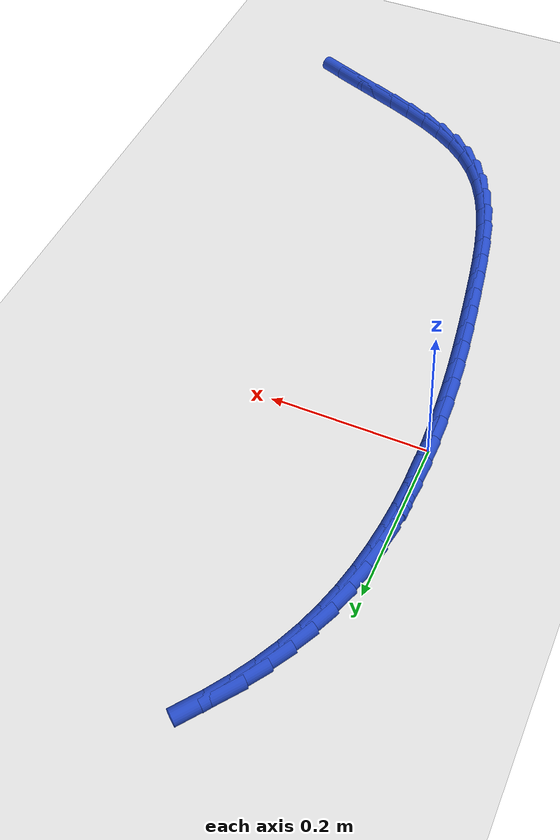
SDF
<sdf version="1.6">
 <world name="default">
  <model name="ground_plane">
   <static>1</static>
   <link name="link">
    <collision name="collision">
     <geometry><plane><normal>0 0 1</normal><size>100 100</size></plane></geometry>
     <surface><friction><ode><mu>100</mu><mu2>50</mu2></ode></friction></surface>
    </collision>
    <visual name="visual">
     <cast_shadows>0</cast_shadows>
     <geometry><plane><normal>0 0 1</normal><size>100 100</size></plane></geometry>
     <material>
      <script><uri>file://media/materials/scripts/gazebo.material</uri><name>Gazebo/WhiteGlow</name></script>
     </material>
    </visual>
   </link>
  </model>
  <model name="line">
   <link name="link_0">
    <pose>2.6020852139652106e-18 4.85722573273506e-17 0.01 0 1.57 -1.5473122379264526</pose>
    <collision name="collision">
     <geometry><cylinder><radius>0.01</radius><length>0.08</length></cylinder></geometry>
    </collision>
    <visual name="visual">
     <material>
      <script><name>Gazebo/Blue</name><uri>file://media/materials/scripts/gazebo.material</uri></script>
     </material>
     <geometry><cylinder><radius>0.01</radius><length>0.08</length></cylinder></geometry>
    </visual>
   </link>
   <link name="link_1">
    <pose>-0.0007039272480909441 0.02996913533298461 0.01 0 1.57 1.5633113529502236</pose>
    <collision name="collision">
     <geometry><cylinder><radius>0.01</radius><length>0.08</length></cylinder></geometry>
    </collision>
    <visual name="visual">
     <material>
      <script><name>Gazebo/Blue</name><uri>file://media/materials/scripts/gazebo.material</uri></script>
     </material>
     <geometry><cylinder><radius>0.01</radius><length>0.08</length></cylinder></geometry>
    </visual>
   </link>
   <link name="link_2">
    <pose>-0.0004782376076412418 0.06012093417368127 0.01 0 1.57 1.5284069422193465</pose>
    <collision name="collision">
     <geometry><cylinder><radius>0.01</radius><length>0.08</length></cylinder></geometry>
    </collision>
    <visual name="visual">
     <material>
      <script><name>Gazebo/Blue</name><uri>file://media/materials/scripts/gazebo.material</uri></script>
     </material>
     <geometry><cylinder><radius>0.01</radius><length>0.08</length></cylinder></geometry>
    </visual>
   </link>
   <link name="link_3">
    <pose>0.000802609183513676 0.09031904968383503 0.01 0 1.57 1.4892208433925638</pose>
    <collision name="collision">
     <geometry><cylinder><radius>0.01</radius><length>0.08</length></cylinder></geometry>
    </collision>
    <visual name="visual">
     <material>
      <script><name>Gazebo/Blue</name><uri>file://media/materials/scripts/gazebo.material</uri></script>
     </material>
     <geometry><cylinder><radius>0.01</radius><length>0.08</length></cylinder></geometry>
    </visual>
   </link>
   <link name="link_4">
    <pose>0.00326415338753838 0.12042713502519091 0.01 0 1.57 1.4453683356091211</pose>
    <collision name="collision">
     <geometry><cylinder><radius>0.01</radius><length>0.08</length></cylinder></geometry>
    </collision>
    <visual name="visual">
     <material>
      <script><name>Gazebo/Blue</name><uri>file://media/materials/scripts/gazebo.material</uri></script>
     </material>
     <geometry><cylinder><radius>0.01</radius><length>0.08</length></cylinder></geometry>
    </visual>
   </link>
   <link name="link_5">
    <pose>0.007031935266597433 0.1503088433594939 0.01 0 1.57 1.3964419279009448</pose>
    <collision name="collision">
     <geometry><cylinder><radius>0.01</radius><length>0.08</length></cylinder></geometry>
    </collision>
    <visual name="visual">
     <material>
      <script><name>Gazebo/Blue</name><uri>file://media/materials/scripts/gazebo.material</uri></script>
     </material>
     <geometry><cylinder><radius>0.01</radius><length>0.08</length></cylinder></geometry>
    </visual>
   </link>
   <link name="link_6">
    <pose>0.012231495082855402 0.17982782784848902 0.01 0 1.57 1.3420361859047418</pose>
    <collision name="collision">
     <geometry><cylinder><radius>0.01</radius><length>0.08</length></cylinder></geometry>
    </collision>
    <visual name="visual">
     <material>
      <script><name>Gazebo/Blue</name><uri>file://media/materials/scripts/gazebo.material</uri></script>
     </material>
     <geometry><cylinder><radius>0.01</radius><length>0.08</length></cylinder></geometry>
    </visual>
   </link>
   <link name="link_7">
    <pose>0.018988373098476855 0.20884774165392128 0.01 0 1.57 1.281785231526709</pose>
    <collision name="collision">
     <geometry><cylinder><radius>0.01</radius><length>0.08</length></cylinder></geometry>
    </collision>
    <visual name="visual">
     <material>
      <script><name>Gazebo/Blue</name><uri>file://media/materials/scripts/gazebo.material</uri></script>
     </material>
     <geometry><cylinder><radius>0.01</radius><length>0.08</length></cylinder></geometry>
    </visual>
   </link>
   <link name="link_8">
    <pose>0.027428109575626358 0.23723223793753567 0.01 0 1.57 1.2157204596871165</pose>
    <collision name="collision">
     <geometry><cylinder><radius>0.01</radius><length>0.08</length></cylinder></geometry>
    </collision>
    <visual name="visual">
     <material>
      <script><name>Gazebo/Blue</name><uri>file://media/materials/scripts/gazebo.material</uri></script>
     </material>
     <geometry><cylinder><radius>0.01</radius><length>0.08</length></cylinder></geometry>
    </visual>
   </link>
   <link name="link_9">
    <pose>0.03766852281448814 0.26484995638541303 0.01 0 1.57 1.148590877885111</pose>
    <collision name="collision">
     <geometry><cylinder><radius>0.01</radius><length>0.08</length></cylinder></geometry>
    </collision>
    <visual name="visual">
     <material>
      <script><name>Gazebo/Blue</name><uri>file://media/materials/scripts/gazebo.material</uri></script>
     </material>
     <geometry><cylinder><radius>0.01</radius><length>0.08</length></cylinder></geometry>
    </visual>
   </link>
   <link name="link_10">
    <pose>0.0497065658301504 0.29164758649623557 0.01 0 1.57 1.084515714756067</pose>
    <collision name="collision">
     <geometry><cylinder><radius>0.01</radius><length>0.08</length></cylinder></geometry>
    </collision>
    <visual name="visual">
     <material>
      <script><name>Gazebo/Blue</name><uri>file://media/materials/scripts/gazebo.material</uri></script>
     </material>
     <geometry><cylinder><radius>0.01</radius><length>0.08</length></cylinder></geometry>
    </visual>
   </link>
   <link name="link_11">
    <pose>0.06344335004731635 0.3176337083120544 0.01 0 1.57 1.0238896088188574</pose>
    <collision name="collision">
     <geometry><cylinder><radius>0.01</radius><length>0.08</length></cylinder></geometry>
    </collision>
    <visual name="visual">
     <material>
      <script><name>Gazebo/Blue</name><uri>file://media/materials/scripts/gazebo.material</uri></script>
     </material>
     <geometry><cylinder><radius>0.01</radius><length>0.08</length></cylinder></geometry>
    </visual>
   </link>
   <link name="link_12">
    <pose>0.0787773542475194 0.34281860192722147 0.01 0 1.57 0.9668722112428474</pose>
    <collision name="collision">
     <geometry><cylinder><radius>0.01</radius><length>0.08</length></cylinder></geometry>
    </collision>
    <visual name="visual">
     <material>
      <script><name>Gazebo/Blue</name><uri>file://media/materials/scripts/gazebo.material</uri></script>
     </material>
     <geometry><cylinder><radius>0.01</radius><length>0.08</length></cylinder></geometry>
    </visual>
   </link>
   <link name="link_13">
    <pose>0.09560705721229285 0.36721254743608883 0.01 0 1.57 0.9135110585352482</pose>
    <collision name="collision">
     <geometry><cylinder><radius>0.01</radius><length>0.08</length></cylinder></geometry>
    </collision>
    <visual name="visual">
     <material>
      <script><name>Gazebo/Blue</name><uri>file://media/materials/scripts/gazebo.material</uri></script>
     </material>
     <geometry><cylinder><radius>0.01</radius><length>0.08</length></cylinder></geometry>
    </visual>
   </link>
   <link name="link_225">
    <pose>0.3558021597343125 -0.5951620002998941 0.01 0 1.57 -0.368552470827717</pose>
    <collision name="collision">
     <geometry><cylinder><radius>0.01</radius><length>0.08</length></cylinder></geometry>
    </collision>
    <visual name="visual">
     <material>
      <script><name>Gazebo/Blue</name><uri>file://media/materials/scripts/gazebo.material</uri></script>
     </material>
     <geometry><cylinder><radius>0.01</radius><length>0.08</length></cylinder></geometry>
    </visual>
   </link>
   <link name="link_226">
    <pose>0.32531708837969475 -0.5833887022451519 0.01 0 1.57 -0.3541493111493682</pose>
    <collision name="collision">
     <geometry><cylinder><radius>0.01</radius><length>0.08</length></cylinder></geometry>
    </collision>
    <visual name="visual">
     <material>
      <script><name>Gazebo/Blue</name><uri>file://media/materials/scripts/gazebo.material</uri></script>
     </material>
     <geometry><cylinder><radius>0.01</radius><length>0.08</length></cylinder></geometry>
    </visual>
   </link>
   <link name="link_227">
    <pose>0.29430615253818176 -0.5719227856817868 0.01 0 1.57 -0.3578488060266328</pose>
    <collision name="collision">
     <geometry><cylinder><radius>0.01</radius><length>0.08</length></cylinder></geometry>
    </collision>
    <visual name="visual">
     <material>
      <script><name>Gazebo/Blue</name><uri>file://media/materials/scripts/gazebo.material</uri></script>
     </material>
     <geometry><cylinder><radius>0.01</radius><length>0.08</length></cylinder></geometry>
    </visual>
   </link>
   <link name="link_228">
    <pose>0.2633090527748472 -0.5603314555100132 0.01 0 1.57 -0.3797164707828935</pose>
    <collision name="collision">
     <geometry><cylinder><radius>0.01</radius><length>0.08</length></cylinder></geometry>
    </collision>
    <visual name="visual">
     <material>
      <script><name>Gazebo/Blue</name><uri>file://media/materials/scripts/gazebo.material</uri></script>
     </material>
     <geometry><cylinder><radius>0.01</radius><length>0.08</length></cylinder></geometry>
    </visual>
   </link>
   <link name="link_229">
    <pose>0.2328654896547647 -0.5481819166300449 0.01 0 1.57 -0.4209510022056774</pose>
    <collision name="collision">
     <geometry><cylinder><radius>0.01</radius><length>0.08</length></cylinder></geometry>
    </collision>
    <visual name="visual">
     <material>
      <script><name>Gazebo/Blue</name><uri>file://media/materials/scripts/gazebo.material</uri></script>
     </material>
     <geometry><cylinder><radius>0.01</radius><length>0.08</length></cylinder></geometry>
    </visual>
   </link>
   <link name="link_230">
    <pose>0.2035151637430077 -0.535041373942096 0.01 0 1.57 -0.48380648980574636</pose>
    <collision name="collision">
     <geometry><cylinder><radius>0.01</radius><length>0.08</length></cylinder></geometry>
    </collision>
    <visual name="visual">
     <material>
      <script><name>Gazebo/Blue</name><uri>file://media/materials/scripts/gazebo.material</uri></script>
     </material>
     <geometry><cylinder><radius>0.01</radius><length>0.08</length></cylinder></geometry>
    </visual>
   </link>
   <link name="link_231">
    <pose>0.17579777560465007 -0.5204770323463811 0.01 0 1.57 -0.5713183870983618</pose>
    <collision name="collision">
     <geometry><cylinder><radius>0.01</radius><length>0.08</length></cylinder></geometry>
    </collision>
    <visual name="visual">
     <material>
      <script><name>Gazebo/Blue</name><uri>file://media/materials/scripts/gazebo.material</uri></script>
     </material>
     <geometry><cylinder><radius>0.01</radius><length>0.08</length></cylinder></geometry>
    </visual>
   </link>
   <link name="link_232">
    <pose>0.1502530258047653 -0.5040560967431139 0.01 0 1.57 -0.6864966998333735</pose>
    <collision name="collision">
     <geometry><cylinder><radius>0.01</radius><length>0.08</length></cylinder></geometry>
    </collision>
    <visual name="visual">
     <material>
      <script><name>Gazebo/Blue</name><uri>file://media/materials/scripts/gazebo.material</uri></script>
     </material>
     <geometry><cylinder><radius>0.01</radius><length>0.08</length></cylinder></geometry>
    </visual>
   </link>
   <link name="link_233">
    <pose>0.12742061490842702 -0.48534577203250867 0.01 0 1.57 -0.8266215935579694</pose>
    <collision name="collision">
     <geometry><cylinder><radius>0.01</radius><length>0.08</length></cylinder></geometry>
    </collision>
    <visual name="visual">
     <material>
      <script><name>Gazebo/Blue</name><uri>file://media/materials/scripts/gazebo.material</uri></script>
     </material>
     <geometry><cylinder><radius>0.01</radius><length>0.08</length></cylinder></geometry>
    </visual>
   </link>
   <link name="link_234">
    <pose>0.10775604825271652 -0.4639892154183089 0.01 0 1.57 -0.9619238874307702</pose>
    <collision name="collision">
     <geometry><cylinder><radius>0.01</radius><length>0.08</length></cylinder></geometry>
    </collision>
    <visual name="visual">
     <material>
      <script><name>Gazebo/Blue</name><uri>file://media/materials/scripts/gazebo.material</uri></script>
     </material>
     <geometry><cylinder><radius>0.01</radius><length>0.08</length></cylinder></geometry>
    </visual>
   </link>
   <link name="link_235">
    <pose>0.0911357346749166 -0.44015198560104246 0.01 0 1.57 -1.077467595545445</pose>
    <collision name="collision">
     <geometry><cylinder><radius>0.01</radius><length>0.08</length></cylinder></geometry>
    </collision>
    <visual name="visual">
     <material>
      <script><name>Gazebo/Blue</name><uri>file://media/materials/scripts/gazebo.material</uri></script>
     </material>
     <geometry><cylinder><radius>0.01</radius><length>0.08</length></cylinder></geometry>
    </visual>
   </link>
   <link name="link_236">
    <pose>0.0771925062031873 -0.4142193713084648 0.01 0 1.57 -1.172413955440157</pose>
    <collision name="collision">
     <geometry><cylinder><radius>0.01</radius><length>0.08</length></cylinder></geometry>
    </collision>
    <visual name="visual">
     <material>
      <script><name>Gazebo/Blue</name><uri>file://media/materials/scripts/gazebo.material</uri></script>
     </material>
     <geometry><cylinder><radius>0.01</radius><length>0.08</length></cylinder></geometry>
    </visual>
   </link>
   <link name="link_237">
    <pose>0.06555834956250312 -0.38657742381420984 0.01 0 1.57 -1.2478648405015125</pose>
    <collision name="collision">
     <geometry><cylinder><radius>0.01</radius><length>0.08</length></cylinder></geometry>
    </collision>
    <visual name="visual">
     <material>
      <script><name>Gazebo/Blue</name><uri>file://media/materials/scripts/gazebo.material</uri></script>
     </material>
     <geometry><cylinder><radius>0.01</radius><length>0.08</length></cylinder></geometry>
    </visual>
   </link>
   <link name="link_238">
    <pose>0.055865251477838614 -0.35761219439191144 0.01 0 1.57 -1.3056391353521333</pose>
    <collision name="collision">
     <geometry><cylinder><radius>0.01</radius><length>0.08</length></cylinder></geometry>
    </collision>
    <visual name="visual">
     <material>
      <script><name>Gazebo/Blue</name><uri>file://media/materials/scripts/gazebo.material</uri></script>
     </material>
     <geometry><cylinder><radius>0.01</radius><length>0.08</length></cylinder></geometry>
    </visual>
   </link>
   <link name="link_239">
    <pose>0.04774519867416838 -0.3277097343152039 0.01 0 1.57 -1.347515224518926</pose>
    <collision name="collision">
     <geometry><cylinder><radius>0.01</radius><length>0.08</length></cylinder></geometry>
    </collision>
    <visual name="visual">
     <material>
      <script><name>Gazebo/Blue</name><uri>file://media/materials/scripts/gazebo.material</uri></script>
     </material>
     <geometry><cylinder><radius>0.01</radius><length>0.08</length></cylinder></geometry>
    </visual>
   </link>
   <link name="link_240">
    <pose>0.04083017787646711 -0.29725609485772164 0.01 0 1.57 -1.3748379374488933</pose>
    <collision name="collision">
     <geometry><cylinder><radius>0.01</radius><length>0.08</length></cylinder></geometry>
    </collision>
    <visual name="visual">
     <material>
      <script><name>Gazebo/Blue</name><uri>file://media/materials/scripts/gazebo.material</uri></script>
     </material>
     <geometry><cylinder><radius>0.01</radius><length>0.08</length></cylinder></geometry>
    </visual>
   </link>
   <link name="link_241">
    <pose>0.03475217580970903 -0.26663732729309736 0.01 0 1.57 -1.388521547173665</pose>
    <collision name="collision">
     <geometry><cylinder><radius>0.01</radius><length>0.08</length></cylinder></geometry>
    </collision>
    <visual name="visual">
     <material>
      <script><name>Gazebo/Blue</name><uri>file://media/materials/scripts/gazebo.material</uri></script>
     </material>
     <geometry><cylinder><radius>0.01</radius><length>0.08</length></cylinder></geometry>
    </visual>
   </link>
   <link name="link_242">
    <pose>0.02914820661830472 -0.2362339493078071 0.01 0 1.57 -1.3956650520698113</pose>
    <collision name="collision">
     <geometry><cylinder><radius>0.01</radius><length>0.08</length></cylinder></geometry>
    </collision>
    <visual name="visual">
     <material>
      <script><name>Gazebo/Blue</name><uri>file://media/materials/scripts/gazebo.material</uri></script>
     </material>
     <geometry><cylinder><radius>0.01</radius><length>0.08</length></cylinder></geometry>
    </visual>
   </link>
   <link name="link_243">
    <pose>0.023838308063307834 -0.20622502789425393 0.01 0 1.57 -1.405099131670875</pose>
    <collision name="collision">
     <geometry><cylinder><radius>0.01</radius><length>0.08</length></cylinder></geometry>
    </collision>
    <visual name="visual">
     <material>
      <script><name>Gazebo/Blue</name><uri>file://media/materials/scripts/gazebo.material</uri></script>
     </material>
     <geometry><cylinder><radius>0.01</radius><length>0.08</length></cylinder></geometry>
    </visual>
   </link>
   <link name="link_244">
    <pose>0.01887332794884404 -0.17653558171911848 0.01 0 1.57 -1.4174183325132383</pose>
    <collision name="collision">
     <geometry><cylinder><radius>0.01</radius><length>0.08</length></cylinder></geometry>
    </collision>
    <visual name="visual">
     <material>
      <script><name>Gazebo/Blue</name><uri>file://media/materials/scripts/gazebo.material</uri></script>
     </material>
     <geometry><cylinder><radius>0.01</radius><length>0.08</length></cylinder></geometry>
    </visual>
   </link>
   <link name="link_245">
    <pose>0.014318860301462332 -0.1470743985560602 0.01 0 1.57 -1.4326041243557812</pose>
    <collision name="collision">
     <geometry><cylinder><radius>0.01</radius><length>0.08</length></cylinder></geometry>
    </collision>
    <visual name="visual">
     <material>
      <script><name>Gazebo/Blue</name><uri>file://media/materials/scripts/gazebo.material</uri></script>
     </material>
     <geometry><cylinder><radius>0.01</radius><length>0.08</length></cylinder></geometry>
    </visual>
   </link>
   <link name="link_246">
    <pose>0.0102404991477117 -0.11775026617873818 0.01 0 1.57 -1.4505841259877073</pose>
    <collision name="collision">
     <geometry><cylinder><radius>0.01</radius><length>0.08</length></cylinder></geometry>
    </collision>
    <visual name="visual">
     <material>
      <script><name>Gazebo/Blue</name><uri>file://media/materials/scripts/gazebo.material</uri></script>
     </material>
     <geometry><cylinder><radius>0.01</radius><length>0.08</length></cylinder></geometry>
    </visual>
   </link>
   <link name="link_247">
    <pose>0.0067038385141411526 -0.08847197236081188 0.01 0 1.57 -1.4712289911740253</pose>
    <collision name="collision">
     <geometry><cylinder><radius>0.01</radius><length>0.08</length></cylinder></geometry>
    </collision>
    <visual name="visual">
     <material>
      <script><name>Gazebo/Blue</name><uri>file://media/materials/scripts/gazebo.material</uri></script>
     </material>
     <geometry><cylinder><radius>0.01</radius><length>0.08</length></cylinder></geometry>
    </visual>
   </link>
   <link name="link_248">
    <pose>0.00377447242729969 -0.059148304875940576 0.01 0 1.57 -1.494351623179881</pose>
    <collision name="collision">
     <geometry><cylinder><radius>0.01</radius><length>0.08</length></cylinder></geometry>
    </collision>
    <visual name="visual">
     <material>
      <script><name>Gazebo/Blue</name><uri>file://media/materials/scripts/gazebo.material</uri></script>
     </material>
     <geometry><cylinder><radius>0.01</radius><length>0.08</length></cylinder></geometry>
    </visual>
   </link>
   <link name="link_249">
    <pose>0.0015179949137363088 -0.02968805149778353 0.01 0 1.57 -1.5197093065731653</pose>
    <collision name="collision">
     <geometry><cylinder><radius>0.01</radius><length>0.08</length></cylinder></geometry>
    </collision>
    <visual name="visual">
     <material>
      <script><name>Gazebo/Blue</name><uri>file://media/materials/scripts/gazebo.material</uri></script>
     </material>
     <geometry><cylinder><radius>0.01</radius><length>0.08</length></cylinder></geometry>
    </visual>
   </link>
   <link name="link_250">
    <pose>1.2576745200831851e-17 -1.1796119636642288e-16 0.01 0 1.57 -1.5470091385059732</pose>
    <collision name="collision">
     <geometry><cylinder><radius>0.01</radius><length>0.08</length></cylinder></geometry>
    </collision>
    <visual name="visual">
     <material>
      <script><name>Gazebo/Blue</name><uri>file://media/materials/scripts/gazebo.material</uri></script>
     </material>
     <geometry><cylinder><radius>0.01</radius><length>0.08</length></cylinder></geometry>
    </visual>
   </link>
   <link name="link_251">
    <pose>-0.0007139182873602016 0.030007061843750397 0.01 0 1.57 1.5656758498255015</pose>
    <collision name="collision">
     <geometry><cylinder><radius>0.01</radius><length>0.08</length></cylinder></geometry>
    </collision>
    <visual name="visual">
     <material>
      <script><name>Gazebo/Blue</name><uri>file://media/materials/scripts/gazebo.material</uri></script>
     </material>
     <geometry><cylinder><radius>0.01</radius><length>0.08</length></cylinder></geometry>
    </visual>
   </link>
   <link name="link_252">
    <pose>-0.00055816592179533 0.0604243462598087 0.01 0 1.57 -1.5615591553396453</pose>
    <collision name="collision">
     <geometry><cylinder><radius>0.01</radius><length>0.08</length></cylinder></geometry>
    </collision>
    <visual name="visual">
     <material>
      <script><name>Gazebo/Blue</name><uri>file://media/materials/scripts/gazebo.material</uri></script>
     </material>
     <geometry><cylinder><radius>0.01</radius><length>0.08</length></cylinder></geometry>
    </visual>
   </link>
  </model>
 </world>
</sdf>
